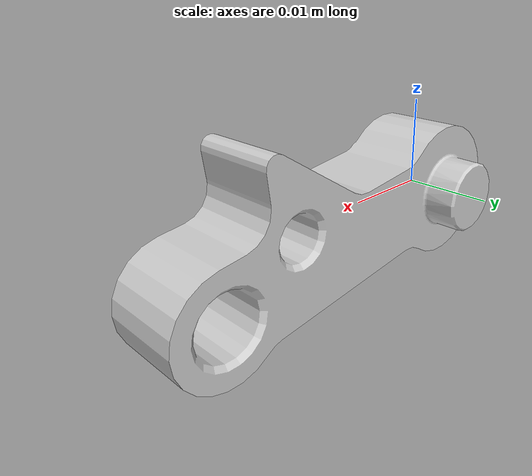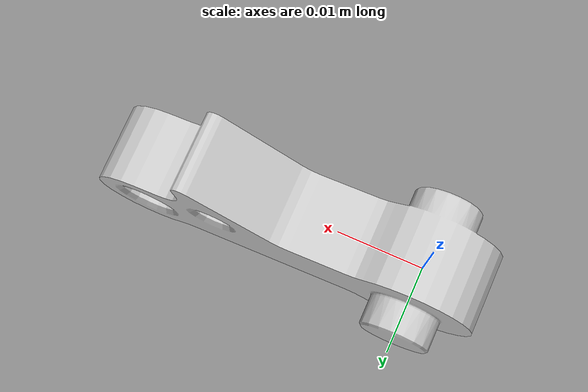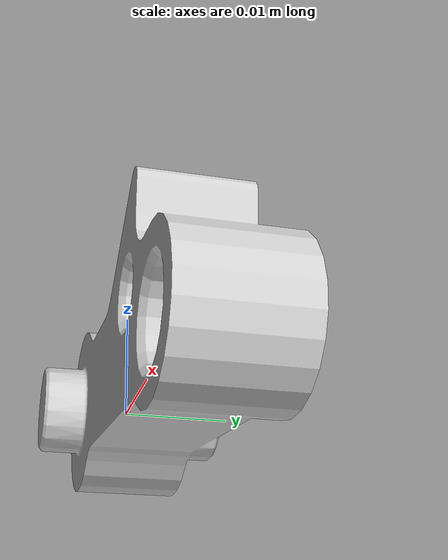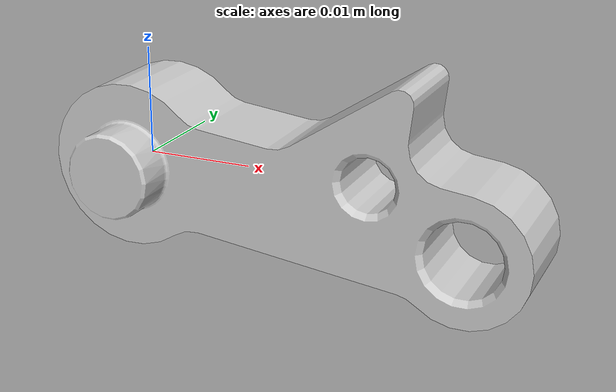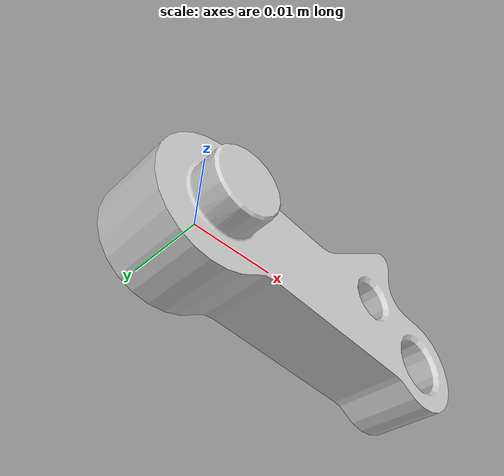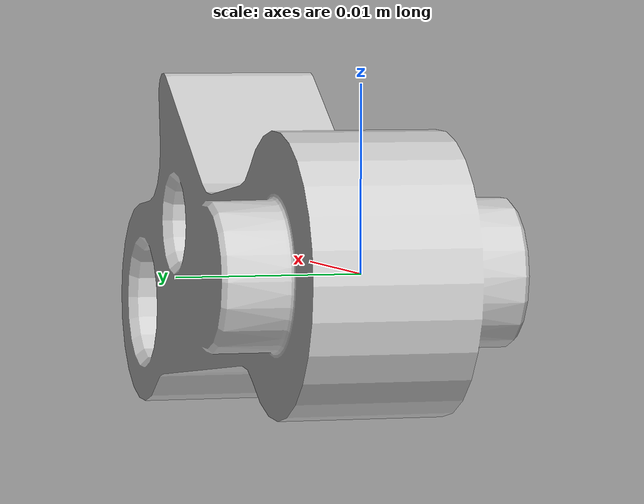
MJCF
<mujoco model="left_knuckle">
  <default>
    <default class="visual">
      <geom group="2" type="mesh" contype="0" conaffinity="0"/>
    </default>
    <default class="collision">
      <geom group="3" type="mesh"/>
    </default>
  </default>
  <asset>
    <material name="material_left_knuckle_0" specular="0.20000000000000004" shininess="1.0" rgba="0.80000000 0.80000000 0.80000000 1.0"/>
    <mesh file="left_knuckle.obj"/>
  </asset>
  <worldbody>
    <body name="left_knuckle">
      <geom material="material_left_knuckle_0" mesh="left_knuckle" class="visual"/>
      <geom mesh="left_knuckle" class="collision"/>
    </body>
  </worldbody>
</mujoco>
